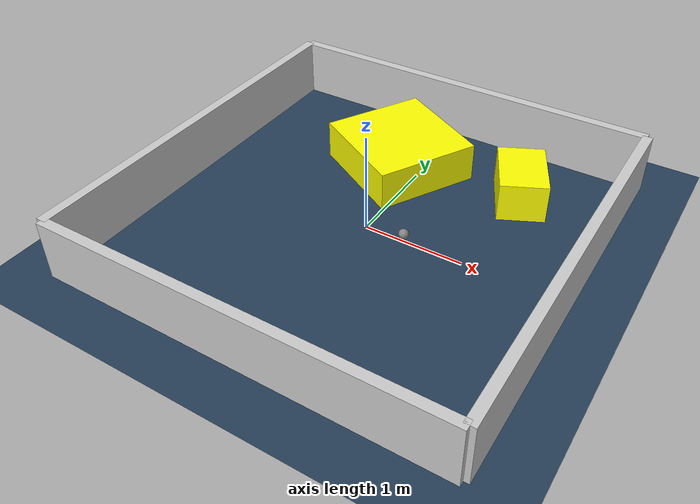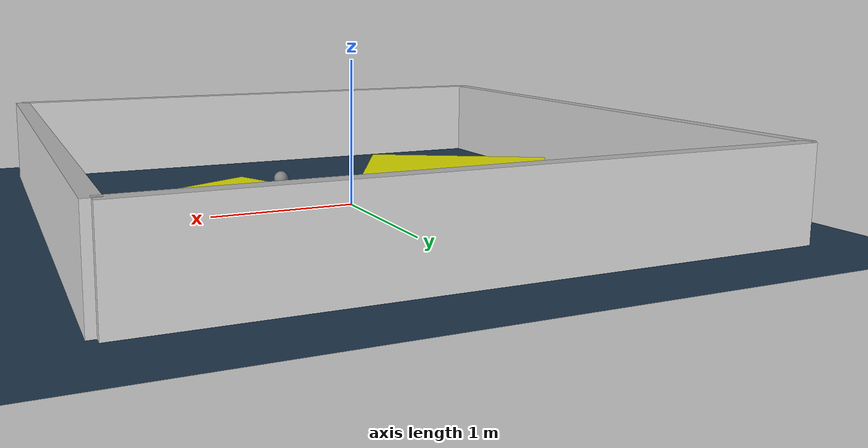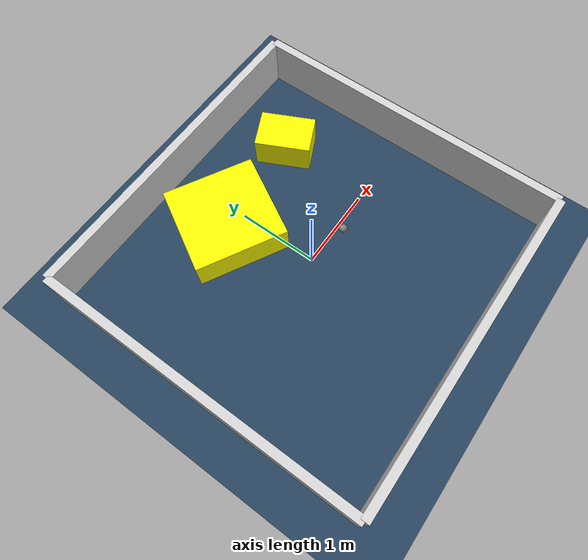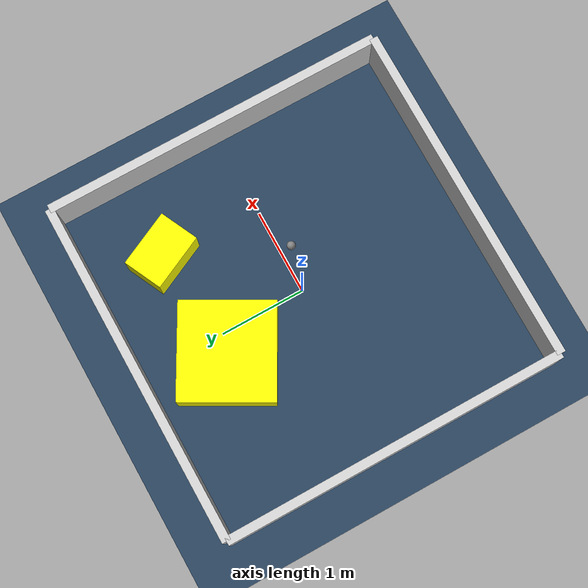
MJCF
<?xml version="1.0" ?>
<mujoco model="generated_environment">
  <option timestep="0.01" integrator="RK4" cone="elliptic"/>
  <default>
    <geom density="1"/>
  </default>
  <asset>
    <texture builtin="gradient" height="3072" rgb1="0.3 0.5 0.7" rgb2="0 0 0" type="skybox" width="512"/>
    <texture builtin="checker" height="300" mark="edge" markrgb="0.8 0.8 0.8" name="groundplane" rgb1="0.2 0.3 0.4" rgb2="0.1 0.2 0.3" type="2d" width="300"/>
    <material name="groundplane" reflectance="0.2" texrepeat="5 5" texture="groundplane" texuniform="true"/>
    <material name="robot" rgba="0.0 1.0 0.0 1"/>
  </asset>
  <worldbody>
    <light dir="0 0 -1" directional="true" pos="0 0 1.5"/>
    <geom condim="4" friction="1.0 0.005 0.001" material="groundplane" name="floor" size="0 0 0.05" type="plane"/>
    <body name="walls">
      <geom name="wall_1" condim="4" pos="-2.0 0.0 0.3" rgba="0.800000011920929 0.800000011920929 0.800000011920929 1.0" size="0.05 2.0 0.3" type="box"/>
      <geom name="wall_2" condim="4" pos="2.0 0.0 0.3" rgba="0.800000011920929 0.800000011920929 0.800000011920929 1.0" size="0.05 2.0 0.3" type="box"/>
      <geom name="wall_3" condim="4" pos="0.0 -2.0 0.3" rgba="0.800000011920929 0.800000011920929 0.800000011920929 1.0" size="2.0 0.05 0.3" type="box"/>
      <geom name="wall_4" condim="4" pos="0.0 2.0 0.3" rgba="0.800000011920929 0.800000011920929 0.800000011920929 1.0" size="2.0 0.05 0.3" type="box"/>
    </body>
    <body name="robot">
      <joint name="joint_x" type="slide" pos="0 0 0" axis="1 0 0"/>
      <joint name="joint_y" type="slide" pos="0 0 0" axis="0 1 0"/>
      <geom name="robot" type="sphere" pos="0.4716637442259892 -0.11964932167986353 0.2" size="0.05" mass="5." friction="1.0 0.005 0.0001" condim="4"/>
      <site name="sensor_ball"/>
    </body>
    <body name="obstacle_1_movable">
      <geom name="obstacle_1_movable" condim="4" pos="1.0703787338720878 1.1597989695109863 0.2" euler="0 0 205.68474477226673" friction="1.0 0.005 0.001" rgba="1 1 0 1" size="0.23513366638734776 0.33638719891426416 0.2" type="box" mass="0.1"/>
      <joint type="free"/>
    </body>
    <body name="obstacle_2_movable">
      <geom name="obstacle_2_movable" condim="4" pos="-0.23918587236138333 1.056519732431474 0.2" euler="0 0 330.90235226738633" friction="1.0 0.005 0.001" rgba="1 1 0 1" size="0.5530919558558531 0.5364894295484256 0.2" type="box" mass="0.1"/>
      <joint type="free"/>
    </body>
  </worldbody>
  <actuator>
    <motor name="actuator_x" joint="joint_x" gear="1" ctrlrange="-1 1"/>
    <motor name="actuator_y" joint="joint_y" gear="1" ctrlrange="-1 1"/>
  </actuator>
</mujoco>
